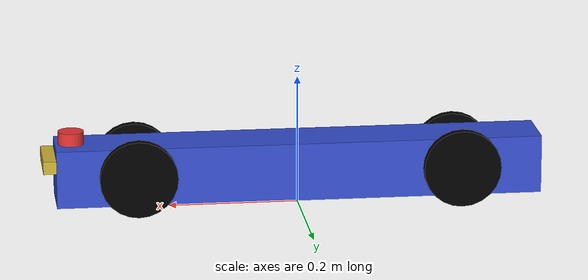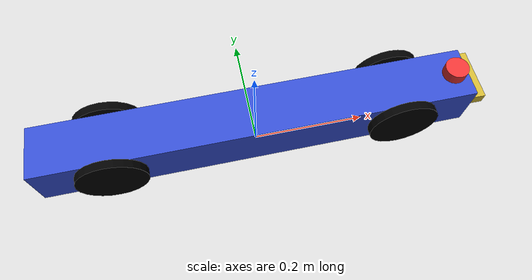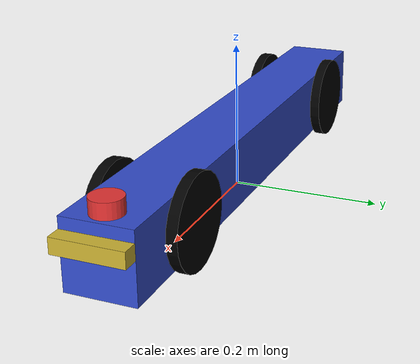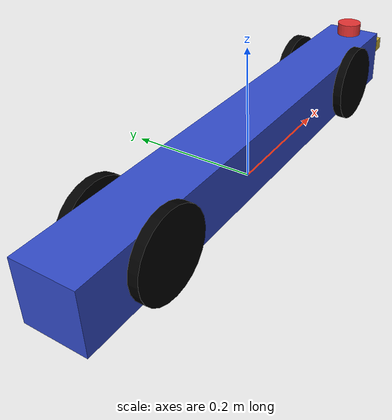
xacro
<?xml version="1.0"?>
<robot name="carbot" xmlns:xacro="http://www.ros.org/wiki/xacro">

  <!-- 顺序必须是：物理 → 模型 → gazebo -->
  <xacro:include filename="car_physics.xacro"/>
  <xacro:include filename="car_base.urdf.xacro"/>
  <xacro:include filename="car.gazebo.xacro"/>

  <xacro:car_gazebo/>

</robot>

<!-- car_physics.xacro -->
<robot xmlns:xacro="http://www.ros.org/wiki/xacro">

<!-- ======================
     基础物理宏定义
     包含：碰撞 + 惯性 + 摩擦
======================= -->

<xacro:macro name="base_physics">
  <collision>
    <origin xyz="0 0 0" rpy="0 0 0"/>
    <geometry>
      <box size="0.75 0.09 0.09"/>
    </geometry>
  </collision>

  <inertial>
    <mass value="1.2"/>
    <inertia ixx="0.01" ixy="0.0" ixz="0.0"
             iyy="0.08" iyz="0.0"
             izz="0.08"/>
  </inertial>
</xacro:macro>

<xacro:macro name="wheel_physics">
  <collision>
    <origin xyz="0 0 0" rpy="0 0 0"/>
    <geometry>
      <cylinder radius="0.06" length="0.014"/>
    </geometry>
  </collision>

  <inertial>
    <mass value="0.1"/>
    <inertia ixx="0.0002" ixy="0" ixz="0"
             iyy="0.0002" iyz="0"
             izz="0.0001"/>
  </inertial>
</xacro:macro>

<xacro:macro name="lidar_physics">
  <collision>
    <origin xyz="0 0 0" rpy="0 0 0"/>
    <geometry>
      <cylinder length="0.02" radius="0.02"/>
    </geometry>
  </collision>

  <inertial>
    <mass value="0.05"/>
    <inertia ixx="0.0001" ixy="0" ixz="0"
             iyy="0.0001" iyz="0"
             izz="0.0001"/>
  </inertial>
</xacro:macro>

<xacro:macro name="imu_physics">
  <collision>
    <origin xyz="0 0 0" rpy="0 0 0"/>
    <geometry>
      <box size="0.02 0.02 0.02"/>
    </geometry>
  </collision>

  <inertial>
    <mass value="0.02"/>
    <inertia ixx="0.00001" ixy="0" ixz="0"
             iyy="0.00001" iyz="0"
             izz="0.00001"/>
  </inertial>
</xacro:macro>

<xacro:macro name="camera_physics">
  <collision>
    <origin xyz="0 0 0" rpy="0 0 0"/>
    <geometry>
      <box size="0.09 0.02 0.02"/>
    </geometry>
  </collision>

  <inertial>
    <mass value="0.08"/>
    <inertia ixx="0.0001" ixy="0" ixz="0"
             iyy="0.0005" iyz="0"
             izz="0.0005"/>
  </inertial>
</xacro:macro>

</robot>

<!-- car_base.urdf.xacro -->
<robot name="carbot" xmlns:xacro="http://www.ros.org/wiki/xacro">

    <!-- 外观模型（visual）+ link + joint   纯模型不包含物理属性，方便在RViz中查看 -->

    <!-- 蓝色 --><material name="blue"><color rgba="0.2 0.3 0.8 1.0"/></material>
    <!-- 黑色 --><material name="black"><color rgba="0.0 0.0 0.0 1.0"/></material>
    <!-- 红色 --><material name="red"><color rgba="0.9 0.2 0.2 1.0"/></material>
    <!-- 绿色 --><material name="green"><color rgba="0.2 0.8 0.3 1.0"/></material>
    <!-- 黄色 --><material name="yellow"><color rgba="0.8 0.7 0.2 1.0"/></material>
    <!-- 灰色 --><material name="gray"><color rgba="0.1 0.1 0.1 1.0"/></material>

  <!-- base_footprint 虚拟坐标系，不用加物理属性 -->
  <link name="base_footprint" />

  <!-- 车身 -->
  <link name="base_link">
    <visual>
      <origin xyz="0 0 0" rpy="0 0 0"/><!-- 前后   左右  上下 -->
      <geometry>
        <!-- 长方体：长 × 宽 × 高 -->
        <box size="0.75 0.09 0.09"/>
      </geometry>
      <material name="blue"/>
    </visual>
    <xacro:base_physics />
  </link>

  <!-- 雷达 -->
  <link name="laser_link">
      <visual>
      <origin xyz="0 0 0" rpy="0 0 0"/>
      <geometry>
        <cylinder length="0.02" radius="0.02"/>
      </geometry>
      <material name="red"/>
    </visual>
    <xacro:lidar_physics />
  </link>

  <!-- 左前车轮 -->
  <link name="left_front_wheel_link">
    <visual>
      <origin xyz="0 0 0" rpy="0 0 0"/>
      <geometry>
          <cylinder radius="0.06" length="0.014"/> <!-- 实际车轮尺寸：直径0.095m，宽度0.014m -->
      </geometry>
      <material name="black"/>
    </visual>
    <xacro:wheel_physics /> <!-- 添加物理属性 -->
  </link>

  <!-- 右前车轮 -->
  <link name="right_front_wheel_link">
    <visual>
      <origin xyz="0 0 0" rpy="0 0 0"/>
      <geometry>
          <cylinder radius="0.06" length="0.014"/> <!-- 实际车轮尺寸：直径0.095m，宽度0.014m  加直径为0.12m为了美观 -->
      </geometry>
      <material name="black"/>
    </visual>
    <xacro:wheel_physics /> <!-- 添加物理属性 -->
  </link>

  <!-- 左后车轮 -->
  <link name="left_back_wheel_link">
    <visual>
      <origin xyz="0 0 0" rpy="0 0 0"/>
      <geometry>
          <cylinder radius="0.06" length="0.014"/>
      </geometry>
      <material name="black"/>
    </visual>
    <xacro:wheel_physics /> <!-- 添加物理属性 -->
  </link>

  <!-- 右后车轮 -->
  <link name="right_back_wheel_link">
    <visual>
      <origin xyz="0 0 0" rpy="0 0 0"/>
      <geometry>
          <cylinder radius="0.06" length="0.014"/>
      </geometry>
      <material name="black"/>
    </visual>
    <xacro:wheel_physics /> <!-- 添加物理属性 -->
  </link>

  <!-- imu link -->
  <link name="imu_link">
    <visual>
      <origin xyz="0 0 0.0" rpy="0 0 0"/>
      <geometry>
            <box size="0.02 0.02 0.02"/>
      </geometry>
    </visual>
    <xacro:imu_physics />
  </link>

  <!-- 深度相机 link -->
  <link name="depth_camera_link">
    <visual>
      <origin xyz="0 0 0" rpy="0 0 0"/>
      <!-- 相机外形：小长方体，尺寸可自行修改 -->
      <geometry>
        <box size="0.09 0.02 0.02"/>
      </geometry>
      <material name="yellow"/>
    </visual>
    <xacro:camera_physics />
  </link>

<!-- ==========================================
                    关节
    ==========================================-->

  <!-- 虚拟和车身 joint -->
  <joint name="footprint__base_joint" type="fixed">
      <parent link="base_footprint" />
      <child link="base_link" />
      <origin xyz="0 0 0.06" />  <!-- 前后   左右  上下  等于轮子半径，刚好着地 -->
  </joint>

  <!-- 雷达和车身 joint -->
  <joint name="base_laser_joint" type="fixed">
      <parent link="base_link" />
      <child link="laser_link" />
      <origin xyz="0.35 0 0.055" />  <!-- 前后   左右  上下：车身高度/2+雷达高度-->
  </joint>

    <!-- 左前轮 -->
  <joint name="left_front_wheel_joint" type="continuous">
      <parent link="base_link"/>
      <child link="left_front_wheel_link"/>
      <origin xyz="0.25  0.052  0" rpy="1.5708 0 0"/>
      <axis xyz="0 0 1" />
  </joint>

  <!-- 右前轮 -->
  <joint name="right_front_wheel_joint" type="continuous">
      <parent link="base_link"/>
      <child link="right_front_wheel_link"/>
      <origin xyz="0.25 -0.052  0" rpy="1.5708 0 0"/>
      <axis xyz="0 0 1" />
  </joint>

  <!-- 左后轮 -->
  <joint name="left_back_wheel_joint" type="continuous">
      <parent link="base_link"/>
      <child link="left_back_wheel_link"/>
      <origin xyz="-0.25  0.052  0" rpy="1.5708 0 0"/>
      <axis xyz="0 0 1" />
  </joint>

  <!-- 右后轮 -->
  <joint name="right_back_wheel_joint" type="continuous">
      <parent link="base_link"/>
      <child link="right_back_wheel_link"/>
      <origin xyz="-0.25 -0.052  0" rpy="1.5708 0 0"/>
      <axis xyz="0 0 1" />
  </joint>

  <!-- imu joint -->
  <joint name="imu_joint" type="fixed">
      <parent link="base_link" />
      <child link="imu_link" />
      <origin xyz="0 0 0.02" />
  </joint>

  <!-- 深度相机 固定关节，安装在车头最前端 -->
<joint name="depth_camera_joint" type="fixed">
  <parent link="base_link"/>
  <child link="depth_camera_link"/>
  <!-- x=0.375 车身总长0.75/2+相机厚度0.02/2；y=0居中；z=0.02 安装在车身前部下方 -->
  <origin xyz="0.385 0 0.02" rpy="0 0 1.57"/>
</joint>

</robot>
